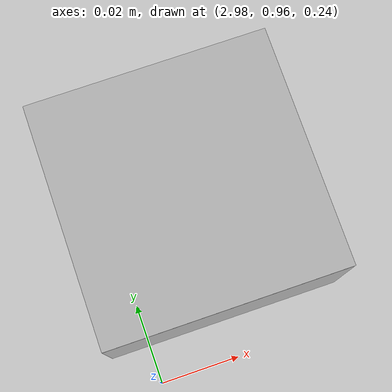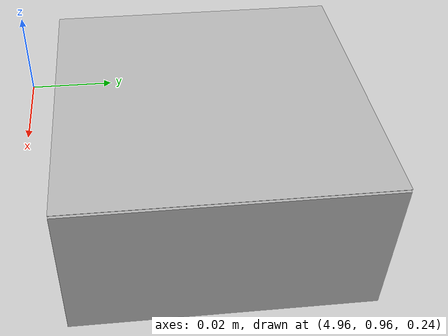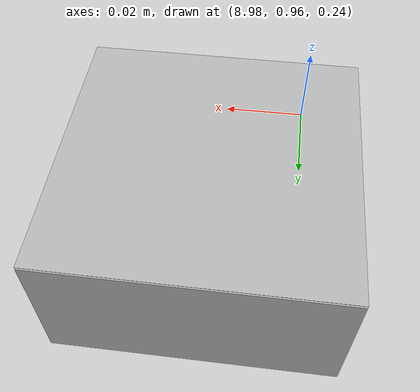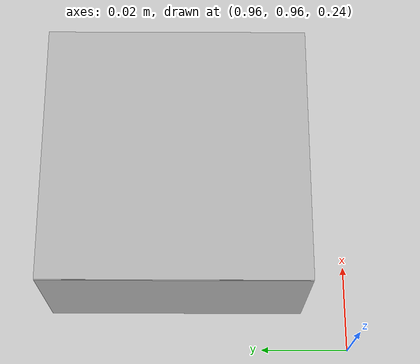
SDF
<sdf version='1.10'>
  <world name='empty'>
    <physics name='1ms' type='ignored'>
      <max_step_size>0.001</max_step_size>
      <real_time_factor>1</real_time_factor>
      <real_time_update_rate>1000</real_time_update_rate>
    </physics>
    <plugin name='gz::sim::systems::Physics' filename='gz-sim-physics-system'/>
    <plugin name='gz::sim::systems::UserCommands' filename='gz-sim-user-commands-system'/>
    <plugin name='gz::sim::systems::SceneBroadcaster' filename='gz-sim-scene-broadcaster-system'/>
    <plugin name='gz::sim::systems::Contact' filename='gz-sim-contact-system'/>
    <plugin name='gz::sim::systems::Sensors' filename='gz-sim-sensors-system'/>
    <plugin name='gz::sim::systems::Imu' filename='gz-sim-imu-system'/>
    <gravity>0 0 -9.8</gravity>
    <magnetic_field>5.5645e-06 2.28758e-05 -4.23884e-05</magnetic_field>
    <atmosphere type='adiabatic'/>
    <scene>
      <ambient>0.4 0.4 0.4 1</ambient>
      <background>0.7 0.7 0.7 1</background>
      <shadows>true</shadows>
    </scene>

    <model name='ground_plane'>
      <static>true</static>
      <link name='link'>
        <collision name='collision'>
          <geometry>
            <plane>
              <normal>0 0 1</normal>
              <size>100 100</size>
            </plane>
          </geometry>
        </collision>
        <visual name='visual'>
          <geometry>
            <plane>
              <normal>0 0 1</normal>
              <size>100 100</size>
            </plane>
          </geometry>
          <material>
            <ambient>0.8 0.8 0.8 1</ambient>
            <diffuse>0.8 0.8 0.8 1</diffuse>
            <specular>0.8 0.8 0.8 1</specular>
          </material>
        </visual>
      </link>
    </model>

    <include>
      <uri>file:///home/rubin/exp_robot_ws/src/aruco_marker_robot/gazebo_models/aruco_box</uri>
      <name>marker_id_1</name>
      <pose>1.0 1.0 0.25 0 0 3.14159</pose>
    </include>

    <include>
      <uri>file:///home/rubin/exp_robot_ws/src/aruco_marker_robot/gazebo_models/aruco_box</uri>
      <name>marker_id_2</name>
      <pose>3.0 1.0 0.25 0 0 3.14159</pose>
    </include>

    <include>
      <uri>file:///home/rubin/exp_robot_ws/src/aruco_marker_robot/gazebo_models/aruco_box</uri>
      <name>marker_id_3</name>
      <pose>5.0 1.0 0.25 0 0 3.14159</pose>
    </include>

    <include>
      <uri>file:///home/rubin/exp_robot_ws/src/aruco_marker_robot/gazebo_models/aruco_box</uri>
      <name>marker_id_4</name>
      <pose>7.0 1.0 0.25 0 0 3.14159</pose>
    </include>

    <include>
      <uri>file:///home/rubin/exp_robot_ws/src/aruco_marker_robot/gazebo_models/aruco_box</uri>
      <name>marker_id_5</name>
      <pose>9.0 1.0 0.25 0 0 3.14159</pose>
    </include>

    <light name='sun' type='directional'>
      <pose>0 0 10 0 0 0</pose>
      <cast_shadows>true</cast_shadows>
      <intensity>1</intensity>
      <direction>-0.5 0.1 -0.9</direction>
      <diffuse>0.8 0.8 0.8 1</diffuse>
      <specular>0.2 0.2 0.2 1</specular>
      <attenuation>
        <range>1000</range>
        <linear>0.01</linear>
        <constant>0.9</constant>
        <quadratic>0.001</quadratic>
      </attenuation>
    </light>
  </world>
</sdf>

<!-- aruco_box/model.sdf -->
<sdf version="1.6">
  <model name="aruco_box">
    <static>false</static>

    <link name="link">
      <inertial>
        <mass>0.05</mass>
        <inertia>
          <ixx>1e-5</ixx><iyy>1e-5</iyy><izz>1e-5</izz>
          <ixy>0</ixy><ixz>0</ixz><iyz>0</iyz>
        </inertia>
      </inertial>

      <collision name="box_col">
        <geometry>
          <box><size>0.06 0.06 0.03</size></box>
        </geometry>
      </collision>

      <visual name="box_vis">
        <geometry>
          <box><size>0.06 0.06 0.03</size></box>
        </geometry>
        <material>
          <ambient>0.7 0.7 0.7 1</ambient>
          <diffuse>0.7 0.7 0.7 1</diffuse>
        </material>
      </visual>

      <!-- Top marker plane -->
      <visual name="marker_plane">
        <!-- box half height = 0.015, lift slightly to avoid z-fighting -->
        <pose>0 0 0.0156 0 0 0</pose>
        <geometry>
          <plane>
            <normal>0 0 1</normal>
            <size>0.06 0.06</size>
          </plane>
        </geometry>
        <material>
          <script>
            <uri>model://aruco_box/materials/scripts</uri>
            <uri>model://aruco_box/materials/textures</uri>
            <name>ArucoBox/Marker</name>
          </script>
        </material>
      </visual>

    </link>
  </model>
</sdf>
